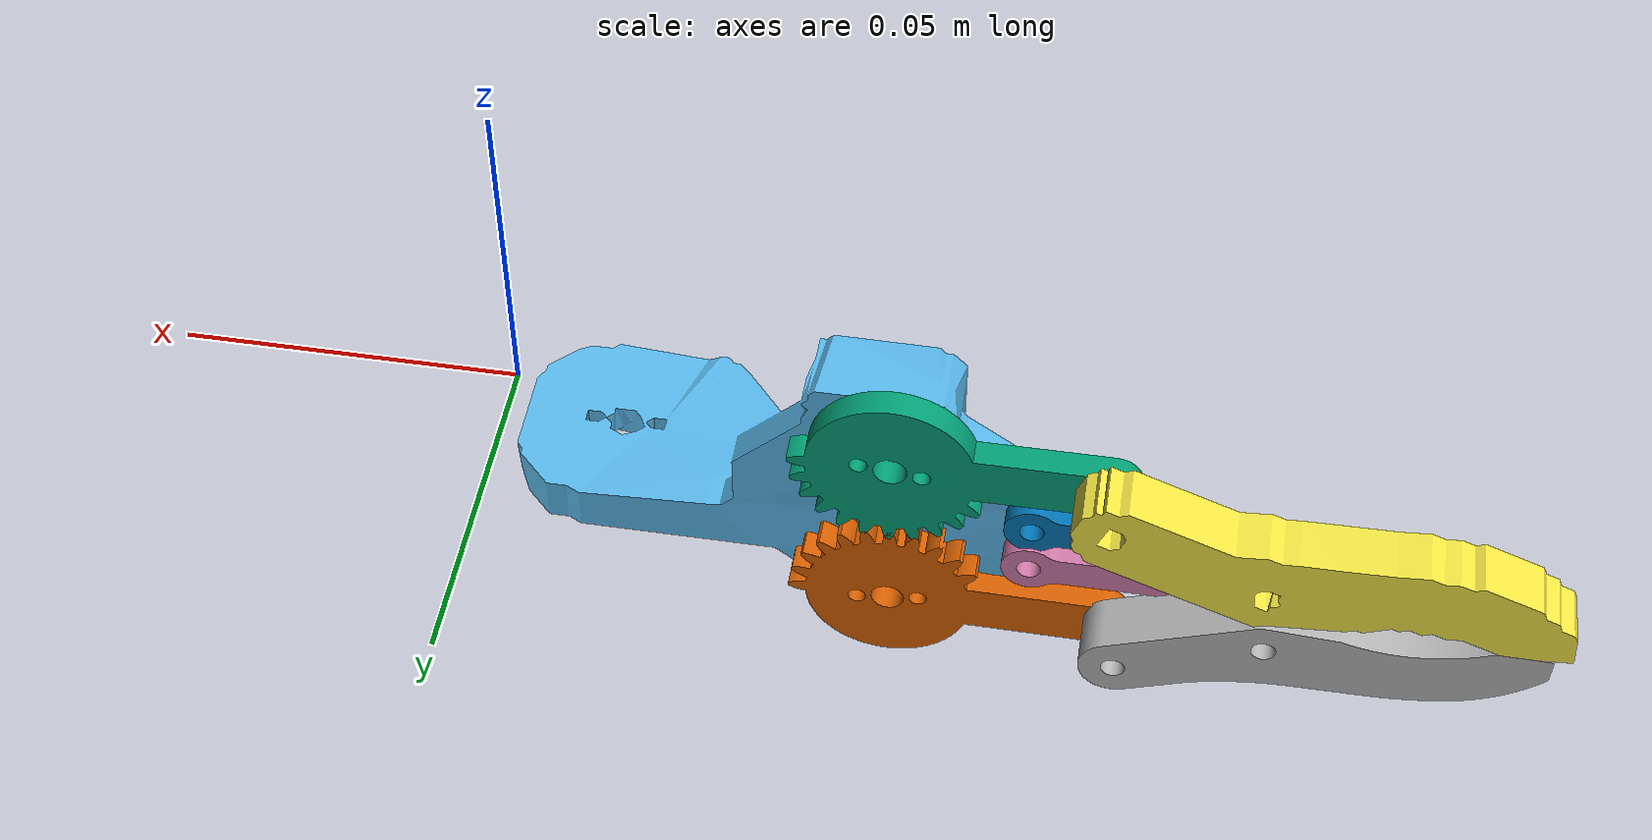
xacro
<?xml version="1.0" ?>
<robot name="rg3" xmlns:xacro="http://ros.org/wiki/xacro">
<!-- Argumento para o prefixo TF -->
    <xacro:arg name="robot_name" default="tangs" />
    <xacro:property name="tf_prefix" value="$(arg robot_name)" />

<!-- Arquivo para visualização da garra gripper - somente -->

    <xacro:property name="pi" value="3.141592654" />
    <xacro:include filename="$(find gripper_description)/urdf/gazebo.xacro" />
    <xacro:include filename="$(find gripper_description)/urdf/transmissions.xacro" />

    <!-- Xmacro principal que gera a garra -->

    <xacro:macro name="gripper" params="" >

    <link name="dummy_link">
    </link>

    <link name="palm_link">
        <collision>
            <origin xyz="0.015 0.015 -0.018" rpy="${pi} ${-pi} 0.0"/>
            <geometry>
                <mesh filename="package://gripper_description/meshes/visual/RG3_gripper_base_m_tk2.stl"/>
            </geometry>
        </collision>
        <visual>
            <origin xyz="0.015 0.015 -0.018" rpy="${pi} ${-pi} 0.0"/>
            <geometry>
                <mesh filename="package://gripper_description/meshes/visual/RG3_gripper_base_m_tk2.stl"/>
            </geometry>
        </visual>
        <inertial>
            <origin xyz="-0.061902 0.000129 -0.000005" rpy="0.00 0.00 0.00"/>
            <mass value="0.02"/>

            <xacro:box_inertia mass="0.02" x="0.05" y="0.08" z="0.01"/>

        </inertial>
    </link>

    <link name="l_moment_arm_link">
        <collision>
            <origin xyz="0.01 -0.0021 0.0005" rpy="0.00 0.00 3.01415"/>
            <geometry>
                <mesh filename="package://gripper_description/meshes/visual/RG3_gear_left_m.stl"/>
            </geometry>
        </collision>
        <visual>
            <origin xyz="0.01 -0.0021 0.0005" rpy="0.00 0.00 3.01415"/>
            <geometry>
                <mesh filename="package://gripper_description/meshes/visual/RG3_gear_left_m.stl"/>
            </geometry>
        </visual>
        <inertial>
            <origin xyz="0.017004 0.006397 -0.010300" rpy="0.00 0.00 0.00"/>
            <mass value="0.0060209"/>
            <inertia ixx="0.000023" ixy="0.000019" ixz="0.000000"
                     iyy="0.000072" iyz="0.000000"
                     izz="0.000083" />
        </inertial>
    </link>

    <link name="l_finger_link">
        <collision>
            <origin xyz="0.030 -0.005 0.0045" rpy="0.00 0.00 -0.38"/>
            <geometry>
                <mesh filename="package://gripper_description/meshes/visual/RG3_grip_finger_left_m.stl"/>
            </geometry>
        </collision>
        <visual>
            <origin xyz="0.030 -0.005 0.0045" rpy="0.00 0.00 -0.38"/>
            <geometry>
                <mesh filename="package://gripper_description/meshes/visual/RG3_grip_finger_left_m.stl"/>
            </geometry>
        </visual>
        <inertial>
            <origin xyz="0.024695 -0.010178 -0.010001" rpy="0.00 0.00 0.00"/>
            <mass value="0.0081638"/>
            <inertia ixx="0.000006" ixy="-0.000005" ixz="0.000000"
                     iyy="0.000025" iyz="0.000000"
                     izz="0.000026" />
        </inertial>
    </link>

    <link name="l_truss_arm_link">
        <collision>
            <origin xyz="0.016 0.00 0.00" rpy="0.00 0.00 0"/>
            <geometry>
                <mesh filename="package://gripper_description/meshes/visual/RG3_grip_link_left_m.stl"/>
            </geometry>
        </collision>
        <visual>
            <origin xyz="0.016 0.00 0.00" rpy="0.00 0.00 0"/>
            <geometry>
                <mesh filename="package://gripper_description/meshes/visual/RG3_grip_link_left_m.stl"/>
            </geometry>
        </visual>
        <inertial>
            <origin xyz="0.023075 0.012136 -0.010000" rpy="0.00 0.00 0.00"/>
            <mass value="0.0065927"/>
            <inertia ixx="0.000010" ixy="0.000010" ixz="0.000000"
                     iyy="0.000024" iyz="0.000000"
                     izz="0.000025" />
        </inertial>
    </link>

    <link name="r_moment_arm_link">
        <collision>
            <origin xyz="0.01 -0.0111 0.0005" rpy="0.00 0.00 3.000415"/>
            <geometry>
                <mesh filename="package://gripper_description/meshes/visual/RG3_gear_right_m.stl"/>
            </geometry>
        </collision>
        <visual>
            <origin xyz="0.01 -0.0111 0.0005" rpy="0.00 0.00 3.000415"/>
            <geometry>
                <mesh filename="package://gripper_description/meshes/visual/RG3_gear_right_m.stl"/>
            </geometry>
        </visual>
        <inertial>
            <origin xyz="0.017004 -0.006397 -0.010300" rpy="0.00 0.00 0.00"/>
            <mass value="0.0060209"/>
            <inertia ixx="0.000023" ixy="-0.000019" ixz="0.000000"
                     iyy="0.000072" iyz="0.000000"
                     izz="0.000083" />
        </inertial>
    </link>

    <link name="r_truss_arm_link">
        <collision>
             <origin xyz="0.016 -0.000 0.0045" rpy="0.0 0.0 0.0"/>
            <geometry>
                <mesh filename="package://gripper_description/meshes/visual/RG3_grip_link_left_m.stl"/>
            </geometry>
        </collision>
        <visual>
             <origin xyz="0.016 -0.000 0.0045" rpy="0.00 0.00 0.0"/>
            <geometry>
                <mesh filename="package://gripper_description/meshes/visual/RG3_grip_link_left_m.stl"/>
            </geometry>
        </visual>
        <inertial>
            <origin xyz="0.023075 -0.012136 -0.010000" rpy="0.00 0.00 0.00"/>
            <mass value="0.0065927"/>
            <inertia ixx="0.000010" ixy="-0.000010" ixz="0.000000"
                     iyy="0.000024" iyz="0.000000"
                     izz="0.000025" />
        </inertial>
    </link>

    <link name="r_finger_link">
        <collision>
            <origin xyz="0.022 0.026 0.020" rpy="0.00 3.1415 0.38"/>
            <geometry>
               <mesh filename="package://gripper_description/meshes/visual/gear_right3.stl"/>
            </geometry>
        </collision>
        <visual>
            <origin xyz="0.022 0.026 0.020" rpy="0.00 3.1415 0.38"/>
            <geometry>
                <mesh filename="package://gripper_description/meshes/visual/gear_right3.stl"/>
            </geometry>
        </visual>
        <inertial>
            <origin xyz="0.024695 0.010178 -0.010000" rpy="0.00 0.00 0.00"/>
            <mass value="0.0081637"/>
            <inertia ixx="0.000006" ixy="0.000005" ixz="0.000000"
                     iyy="0.000025" iyz="0.000000"
                     izz="0.000026" />
        </inertial>
    </link>

    <!-- Juntas -->

   <joint name="base_fixed_joint" type="fixed">
        <parent link="dummy_link"/>  <!-- Usa o parent_link passado como parâmetro -->
        <child link="palm_link"/>
        <origin xyz="-0.015 0.000 0.0025" rpy="-${pi/2} 0 0"/>
    </joint>

    <joint name="gripper_joint" type="revolute">
        <parent link="palm_link"/>
        <child link="l_moment_arm_link"/>
        <origin xyz="-0.042 -0.005 0.012" rpy="0 0 ${pi}"/>
        <axis xyz="0 0 1"/>
        <limit velocity="3.14" effort="10.6" lower="${0}" upper="${pi*0.5}" />
        <dynamics damping="0.1" friction="0.0" />
        <implicitSpringDamper>True</implicitSpringDamper>
    </joint>

    <xacro:insert_transmission name="gripper_joint" />

    <joint name="l_finger_2_joint" type="revolute">
        <parent link="l_moment_arm_link"/>
        <child link="l_finger_link"/>
        <origin xyz="0.0315 0.0008 0.000" rpy="0 0 0"/>
        <axis xyz="0 0 1"/>
        <limit velocity="3.14" effort="10.6" lower="${-pi*0.5}" upper="${pi*0.5}" />
        <mimic joint="gripper_joint" multiplier="-1"/>
        <dynamics damping="0.1" friction="0.0" />
        <implicitSpringDamper>True</implicitSpringDamper>
    </joint>
    <xacro:insert_transmission name="l_finger_2_joint" />

    <xacro:mimic_joint_plugin_gazebo name_prefix="l_finger_2_joint"
                                     parent_joint="gripper_joint"
                                     mimic_joint="l_finger_2_joint"
                                     has_pid="false"
                                     multiplier="-1.0"
                                     max_effort="10.6" />

    <joint name="l_finger_passive_joint" type="revolute">
        <parent link="palm_link"/>
        <child link="l_truss_arm_link"/>
         <origin xyz="-0.062 0.0045 0.012" rpy="0 0 ${pi}"/>
        <axis xyz="0 0 1"/>
        <limit velocity="3.14" effort="10.6" lower="${-pi*0.5}" upper="${pi*0.5}" />
        <mimic joint="gripper_joint" multiplier="1"/>
        <dynamics damping="0.1" friction="0.0" />
        <implicitSpringDamper>True</implicitSpringDamper>
    </joint>

    <xacro:insert_transmission name="l_finger_passive_joint" />

    <xacro:mimic_joint_plugin_gazebo name_prefix="l_finger_passive_joint"
                                     parent_joint="gripper_joint"
                                     mimic_joint="l_finger_passive_joint"
                                     has_pid="false"
                                     multiplier="1.0"
                                     max_effort="10.6" />

     <joint name="r_finger_1_joint" type="revolute">
        <parent link="palm_link"/>
        <child link="r_moment_arm_link"/>
        <origin xyz="-0.042 0.022 0.008" rpy="0 0 ${pi}"/>
        <axis xyz="0 0 1"/>
        <limit velocity="3.14" effort="10.6" lower="${-pi*0.5}" upper="${pi*0.5}" />
        <mimic joint="gripper_joint" multiplier="-1"/>
        <dynamics damping="0.1" friction="0.0" />
        <implicitSpringDamper>True</implicitSpringDamper>
    </joint>

    <xacro:insert_transmission name="r_finger_1_joint" />
    <xacro:mimic_joint_plugin_gazebo name_prefix="r_finger_1_joint"
                                     parent_joint="gripper_joint"
                                     mimic_joint="r_finger_1_joint"
                                     has_pid="false"
                                     multiplier="-1.0"
                                     max_effort="10.6" />

     <joint name="r_finger_passive_joint" type="revolute">
        <parent link="palm_link"/>
        <child link="r_truss_arm_link"/>
        <origin xyz="-0.062 0.012 0.008" rpy="0 0 ${pi}"/>
        <axis xyz="0 0 1"/>
        <limit velocity="3.14" effort="10.6" lower="${-pi*0.5}" upper="${pi*0.5}" />
        <mimic joint="gripper_joint" multiplier="-1"/>
        <dynamics damping="0.1" friction="0.0" />
        <implicitSpringDamper>True</implicitSpringDamper>
    </joint>
    <xacro:insert_transmission name="r_finger_passive_joint" />
    <xacro:mimic_joint_plugin_gazebo name_prefix="r_finger_passive_joint"
                                     parent_joint="gripper_joint"
                                     mimic_joint="r_finger_passive_joint"
                                     has_pid="false"
                                     multiplier="-1.0"
                                     max_effort="10.6" />

    <joint name="r_finger_2_joint" type="revolute">
        <parent link="r_moment_arm_link"/>
        <child link="r_finger_link"/>
        <origin xyz="0.032 -0.0015 0.005" rpy="0 0 0"/>
        <axis xyz="0 0 1"/>
        <limit velocity="3.14" effort="10.6" lower="${-pi*0.5}" upper="${pi*0.5}" />
        <mimic joint="gripper_joint" multiplier="1"/>
        <dynamics damping="0.1" friction="0.0" />
        <implicitSpringDamper>True</implicitSpringDamper>
    </joint>
    <xacro:insert_transmission name="r_finger_2_joint" />
    <xacro:mimic_joint_plugin_gazebo name_prefix="r_finger_2_joint"
                                     parent_joint="gripper_joint"
                                     mimic_joint="r_finger_2_joint"
                                     has_pid="false"
                                     multiplier="1.0"
                                     max_effort="10.6" />

</xacro:macro>

<xacro:macro name="box_inertia" params="mass x y z">
    <inertia  ixx="${mass*(y*y+z*z)/12}" ixy = "0" ixz = "0"
              iyy="${mass*(x*x+z*z)/12}" iyz = "0"
              izz="${mass*(x*x+z*z)/12}" />
</xacro:macro>

<!-- Executa a macro e gera a garra-->

<xacro:gripper />

</robot>

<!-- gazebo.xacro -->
<robot xmlns:xacro="http://ros.org/wiki/xacro">

    <!-- Argumento para o prefixo TF -->
	<xacro:arg name="robot_name" default="tangs" />
	<xacro:property name="tf_prefix" value="$(arg robot_name)" />
    <xacro:property name="kp" value="1E12"/>
	<xacro:property name="kd" value="10"/>
	<xacro:property name="mu1" value="10.0"/>
	<xacro:property name="mu2" value="10.0"/>

	<!-- Hand -->
	<gazebo reference="${tf_prefix}/hand_link">
		<kp>${kp}</kp>
        <kd>${kd}</kd>
        <mu1>${mu1}</mu1>
        <mu2>${mu2}</mu2>
		<material>Gazebo/White</material>
		<selfCollide>false</selfCollide>
	</gazebo>

    <!-- Left Finger -->
	<gazebo reference="${tf_prefix}/l_moment_arm_link">
		<kp>${kp}</kp>
        <kd>${kd}</kd>
        <mu1>${mu1}</mu1>
        <mu2>${mu2}</mu2>
		<material>Gazebo/White</material>
		<selfCollide>false</selfCollide>
	</gazebo>

	<gazebo reference="${tf_prefix}/l_truss_arm_link">
		<kp>${kp}</kp>
        <kd>${kd}</kd>
        <mu1>${mu1}</mu1>
        <mu2>${mu2}</mu2>
		<material>Gazebo/White</material>
		<selfCollide>false</selfCollide>
	</gazebo>

	<gazebo reference="${tf_prefix}/l_finger">
		<kp>${kp}</kp>
        <kd>${kd}</kd>
        <mu1>${mu1}</mu1>
        <mu2>${mu2}</mu2>
		<material>Gazebo/White</material>
		<selfCollide>false</selfCollide>
	</gazebo>

	<!-- Right Finger -->
	<gazebo reference="${tf_prefix}/r_moment_arm_link">
		<kp>${kp}</kp>
        <kd>${kd}</kd>
        <mu1>${mu1}</mu1>
        <mu2>${mu2}</mu2>
		<material>Gazebo/White</material>
		<selfCollide>false</selfCollide>
	</gazebo>

	<gazebo reference="${tf_prefix}/r_truss_arm_link">
		<kp>${kp}</kp>
        <kd>${kd}</kd>
        <mu1>${mu1}</mu1>
        <mu2>${mu2}</mu2>
		<material>Gazebo/White</material>
		<selfCollide>false</selfCollide>
	</gazebo>

	<gazebo reference="${tf_prefix}/r_finger">
		<kp>${kp}</kp>
        <kd>${kd}</kd>
        <mu1>${mu1}</mu1>
        <mu2>${mu2}</mu2>
		<material>Gazebo/White</material>
		<selfCollide>false</selfCollide>
	</gazebo>

	<xacro:macro name="mimic_joint_plugin_gazebo" params="name_prefix parent_joint mimic_joint has_pid:=false multiplier:=1.0 offset:=0 sensitiveness:=0.0 max_effort:=1.0 robot_namespace:=''">
		<gazebo>
			<plugin name="${name_prefix}mimic_joint_plugin" filename="libroboticsgroup_gazebo_mimic_joint_plugin.so">
				<joint>${parent_joint}</joint>
				<mimicJoint>${mimic_joint}</mimicJoint>
				<xacro:if value="${has_pid}">                     <!-- if set to true, PID parameters from "/gazebo_ros_control/pid_gains/${mimic_joint}" are loaded -->
					<hasPID />
				</xacro:if>
				<multiplier>${multiplier}</multiplier>
				<offset>${offset}</offset>
				<sensitiveness>${sensitiveness}</sensitiveness>   <!-- if absolute difference between setpoint and process value is below this threshold, do nothing; 0.0 = disable [rad] -->
				<maxEffort>${max_effort}</maxEffort>              <!-- only taken into account if has_pid:=true [Nm] -->
				<xacro:unless value="${robot_namespace == ''}">
					<robotNamespace>${robot_namespace}</robotNamespace>
				</xacro:unless>
			</plugin>
		</gazebo>
  	</xacro:macro>

</robot>
